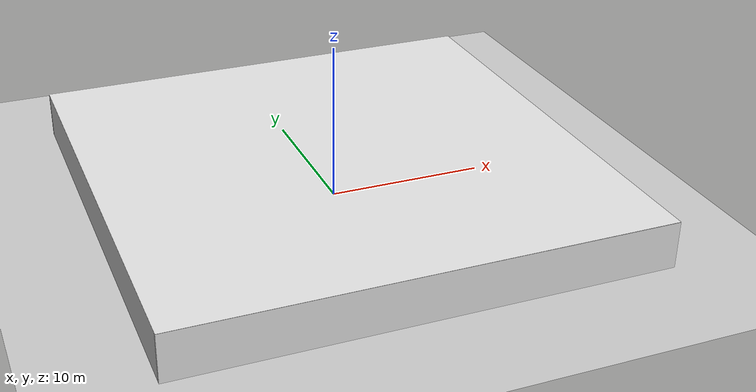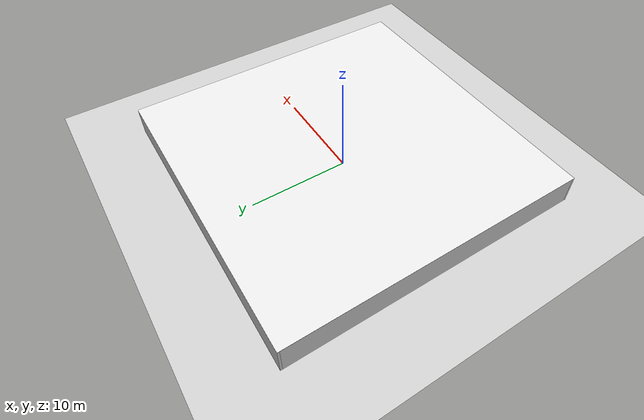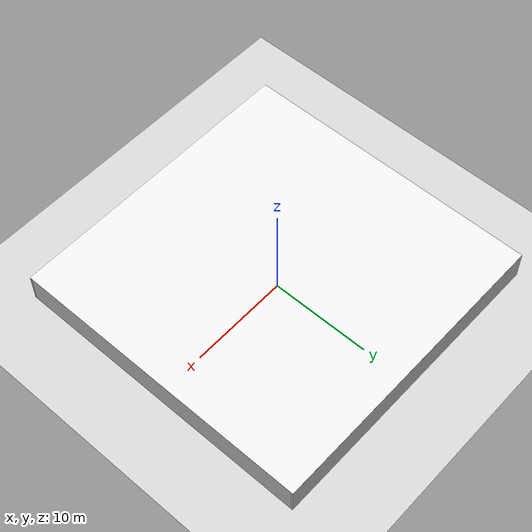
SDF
<sdf version="1.7">
 <world name="empty_room">
  <physics name="default_physics" default="true" type="dart">
   <max_step_size>0.001</max_step_size>
   <real_time_factor>1.0</real_time_factor>
   <real_time_update_rate>1000</real_time_update_rate>
  </physics>
  <plugin filename="gz-sim-physics-system" name="gz::sim::systems::Physics"/>
  <plugin filename="gz-sim-user-commands-system" name="gz::sim::systems::UserCommands"/>
  <plugin filename="gz-sim-scene-broadcaster-system" name="gz::sim::systems::SceneBroadcaster"/>
  <plugin filename="gz-sim-contact-system" name="gz::sim::systems::Contact"/>
  <plugin filename="gz-sim-sensors-system" name="gz::sim::systems::Sensors">
   <render_engine>ogre2</render_engine>
  </plugin>
  <plugin filename="gz-sim-imu-system" name="gz::sim::systems::Imu"/>
  <scene>
   <ambient>0.6 0.6 0.6 1</ambient>
   <background>0.3 0.7 0.9 1</background>
   <shadows>0</shadows>
   <grid>1</grid>
  </scene>
  <light type="directional" name="sun">
   <cast_shadows>false</cast_shadows>
   <pose>0 0 10 0 0 0</pose>
   <diffuse>0.8 0.8 0.8 1</diffuse>
   <specular>0.2 0.2 0.2 1</specular>
   <direction>-0.5 0.1 -0.9</direction>
  </light>
  <model name="ground_plane">
   <static>true</static>
   <link name="link">
    <collision name="collision">
     <geometry><plane><normal>0 0 1</normal><size>100 100</size></plane></geometry>
     <surface>
      <friction><ode><mu>100</mu><mu2>50</mu2></ode></friction>
      <contact>
       <ode>
        <soft_cfm>0</soft_cfm>
        <soft_erp>0.2</soft_erp>
        <kp>1e+13</kp>
        <kd>1</kd>
        <max_vel>0.01</max_vel>
        <min_depth>0.001</min_depth>
       </ode>
      </contact>
     </surface>
    </collision>
    <visual name="visual">
     <cast_shadows>false</cast_shadows>
     <geometry><plane><normal>0 0 1</normal><size>30.4 30.4</size></plane></geometry>
     <material>
      <ambient>0.8 0.8 0.8 1</ambient>
      <diffuse>0.8 0.8 0.8 1</diffuse>
      <specular>0.8 0.8 0.8 1</specular>
     </material>
    </visual>
   </link>
  </model>
  <model name="wall_north">
   <static>true</static>
   <pose>0 15.1 1.5 0 0 0</pose>
   <link name="link">
    <collision name="collision"><geometry><box><size>30.4 0.2 3</size></box></geometry></collision>
    <visual name="visual">
     <geometry><box><size>30.4 0.2 3</size></box></geometry>
     <material><ambient>0.85 0.85 0.85 1</ambient><diffuse>0.85 0.85 0.85 1</diffuse></material>
    </visual>
   </link>
  </model>
  <model name="wall_south">
   <static>true</static>
   <pose>0 -15.1 1.5 0 0 0</pose>
   <link name="link">
    <collision name="collision"><geometry><box><size>30.4 0.2 3</size></box></geometry></collision>
    <visual name="visual">
     <geometry><box><size>30.4 0.2 3</size></box></geometry>
     <material><ambient>0.85 0.85 0.85 1</ambient><diffuse>0.85 0.85 0.85 1</diffuse></material>
    </visual>
   </link>
  </model>
  <model name="wall_east">
   <static>true</static>
   <pose>15.1 0 1.5 0 0 0</pose>
   <link name="link">
    <collision name="collision"><geometry><box><size>0.2 30 3</size></box></geometry></collision>
    <visual name="visual">
     <geometry><box><size>0.2 30 3</size></box></geometry>
     <material><ambient>0.85 0.85 0.85 1</ambient><diffuse>0.85 0.85 0.85 1</diffuse></material>
    </visual>
   </link>
  </model>
  <model name="wall_west">
   <static>true</static>
   <pose>-15.1 0 1.5 0 0 0</pose>
   <link name="link">
    <collision name="collision"><geometry><box><size>0.2 30 3</size></box></geometry></collision>
    <visual name="visual">
     <geometry><box><size>0.2 30 3</size></box></geometry>
     <material><ambient>0.85 0.85 0.85 1</ambient><diffuse>0.85 0.85 0.85 1</diffuse></material>
    </visual>
   </link>
  </model>
  <model name="ceiling">
   <static>true</static>
   <pose>0 0 3 3.14159265 0 0</pose>
   <link name="link">
    <visual name="visual">
     <cast_shadows>false</cast_shadows>
     <geometry><plane><normal>0 0 1</normal><size>30.4 30.4</size></plane></geometry>
     <material><ambient>0.9 0.9 0.9 1</ambient><diffuse>0.9 0.9 0.9 1</diffuse></material>
    </visual>
   </link>
  </model>
  <model name="package_1">
   <static>true</static>
   <pose>2.05 -10.15 0.265 0 0 -0.21</pose>
   <link name="link">
    <collision name="collision"><geometry><box><size>0.44 0.39 0.53</size></box></geometry></collision>
    <visual name="visual">
     <geometry><box><size>0.44 0.39 0.53</size></box></geometry>
     <material><ambient>0.72 0.53 0.33 1</ambient><diffuse>0.72 0.53 0.33 1</diffuse></material>
    </visual>
   </link>
  </model>
  <model name="package_2">
   <static>true</static>
   <pose>-9.66 -2.72 0.255 0 0 0.05</pose>
   <link name="link">
    <collision name="collision"><geometry><box><size>0.64 0.36 0.51</size></box></geometry></collision>
    <visual name="visual">
     <geometry><box><size>0.64 0.36 0.51</size></box></geometry>
     <material><ambient>0.72 0.53 0.33 1</ambient><diffuse>0.72 0.53 0.33 1</diffuse></material>
    </visual>
   </link>
  </model>
  <model name="package_3">
   <static>true</static>
   <pose>11.41 -5.39 0.255 0 0 0.47</pose>
   <link name="link">
    <collision name="collision"><geometry><box><size>0.62 0.53 0.51</size></box></geometry></collision>
    <visual name="visual">
     <geometry><box><size>0.62 0.53 0.51</size></box></geometry>
     <material><ambient>0.72 0.53 0.33 1</ambient><diffuse>0.72 0.53 0.33 1</diffuse></material>
    </visual>
   </link>
  </model>
  <model name="package_4">
   <static>true</static>
   <pose>6.83 -11.74 0.205 0 0 0.65</pose>
   <link name="link">
    <collision name="collision"><geometry><box><size>0.85 0.53 0.41</size></box></geometry></collision>
    <visual name="visual">
     <geometry><box><size>0.85 0.53 0.41</size></box></geometry>
     <material><ambient>0.72 0.53 0.33 1</ambient><diffuse>0.72 0.53 0.33 1</diffuse></material>
    </visual>
   </link>
  </model>
  <model name="package_5">
   <static>true</static>
   <pose>-7.03 8.25 0.25 0 0 0.5</pose>
   <link name="link">
    <collision name="collision"><geometry><box><size>0.55 0.6 0.5</size></box></geometry></collision>
    <visual name="visual">
     <geometry><box><size>0.55 0.6 0.5</size></box></geometry>
     <material><ambient>0.72 0.53 0.33 1</ambient><diffuse>0.72 0.53 0.33 1</diffuse></material>
    </visual>
   </link>
  </model>
  <model name="package_6">
   <static>true</static>
   <pose>6.47 9.46 0.2 0 0 -1.25</pose>
   <link name="link">
    <collision name="collision"><geometry><box><size>0.74 0.63 0.4</size></box></geometry></collision>
    <visual name="visual">
     <geometry><box><size>0.74 0.63 0.4</size></box></geometry>
     <material><ambient>0.72 0.53 0.33 1</ambient><diffuse>0.72 0.53 0.33 1</diffuse></material>
    </visual>
   </link>
  </model>
  <model name="package_7">
   <static>true</static>
   <pose>-2.51 2.82 0.225 0 0 -0.95</pose>
   <link name="link">
    <collision name="collision"><geometry><box><size>0.84 0.41 0.45</size></box></geometry></collision>
    <visual name="visual">
     <geometry><box><size>0.84 0.41 0.45</size></box></geometry>
     <material><ambient>0.72 0.53 0.33 1</ambient><diffuse>0.72 0.53 0.33 1</diffuse></material>
    </visual>
   </link>
  </model>
 </world>
</sdf>
